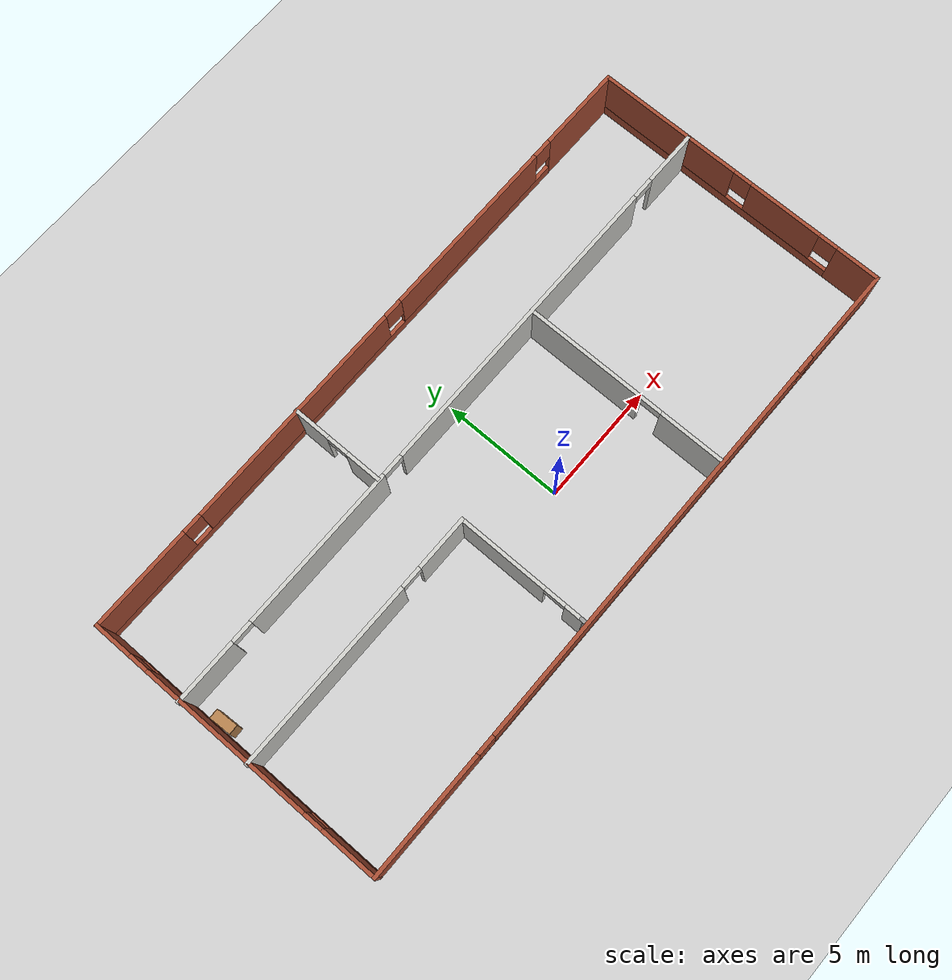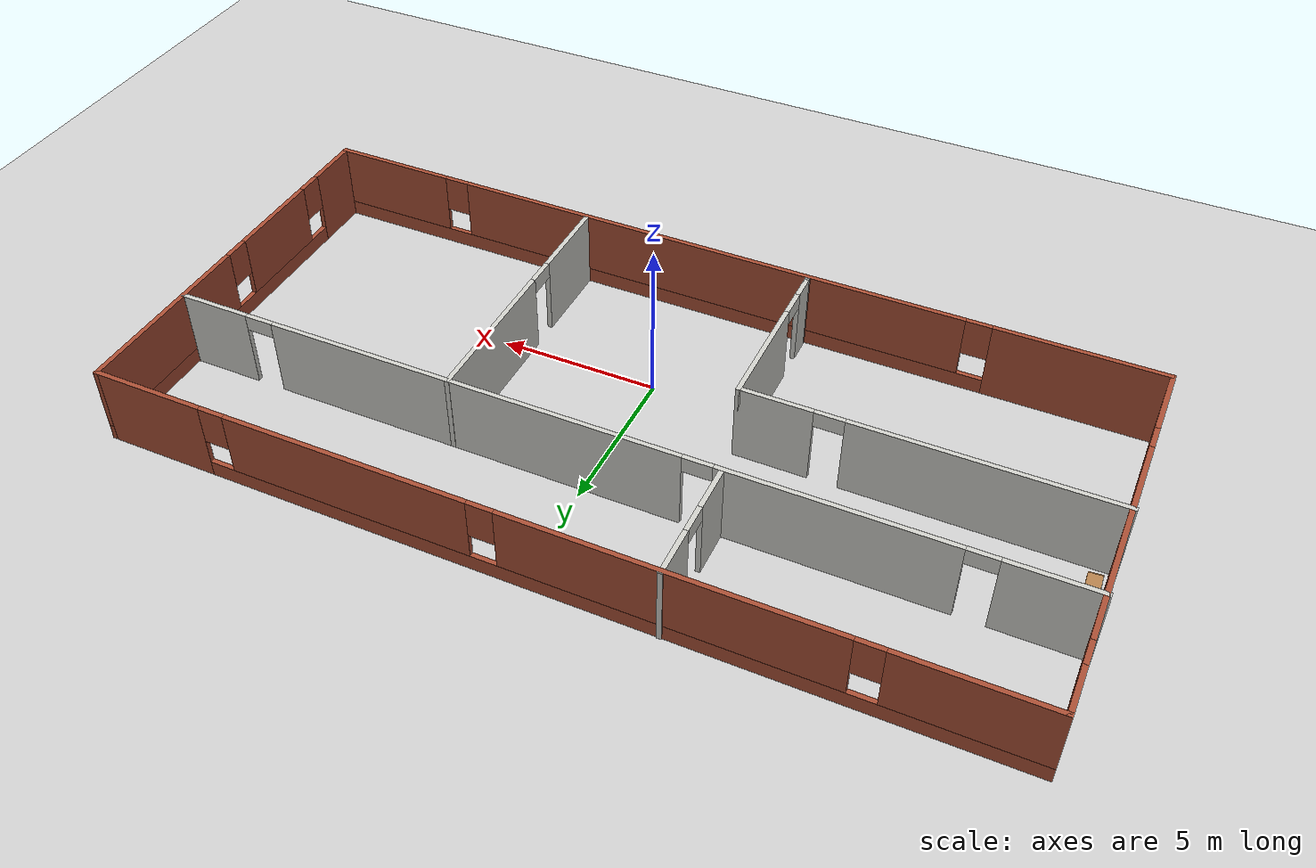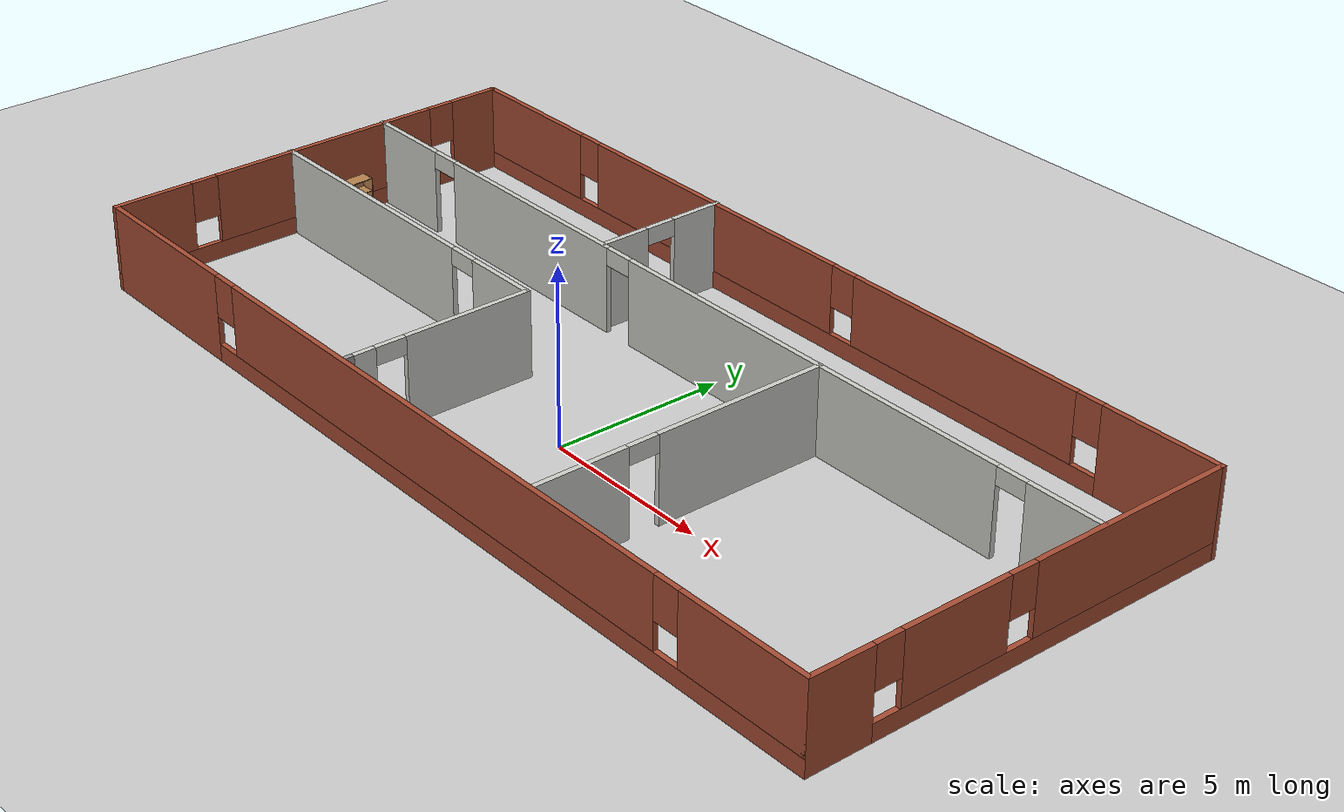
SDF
<sdf version="1.7">
 <world name="default">
  <light name="sun" type="directional">
   <pose>0 0 10 0 -0 0</pose>
   <diffuse>0.8 0.8 0.8 1</diffuse>
   <specular>0.2 0.2 0.2 1</specular>
   <attenuation>
    <range>1000</range>
    <constant>0.9</constant>
    <linear>0.01</linear>
    <quadratic>0.001</quadratic>
   </attenuation>
   <direction>-0.5 0.1 -0.9</direction>
   <spot><inner_angle>0</inner_angle><outer_angle>0</outer_angle><falloff>0</falloff></spot>
  </light>
  <model name="ground_plane">
   <static>1</static>
   <link name="link">
    <collision name="collision">
     <geometry><plane><normal>0 0 1</normal><size>100 100</size></plane></geometry>
     <surface>
      <contact><collide_bitmask>65535</collide_bitmask></contact>
      <friction><ode><mu>100</mu><mu2>50</mu2></ode></friction>
     </surface>
    </collision>
    <visual name="visual">
     <cast_shadows>0</cast_shadows>
     <geometry><plane><normal>0 0 1</normal><size>100 100</size></plane></geometry>
     <material>
      <script><uri>file://media/materials/scripts/gazebo.material</uri><name>Gazebo/Grey</name></script>
     </material>
    </visual>
   </link>
  </model>
  <gravity>0 0 -9.8</gravity>
  <magnetic_field>6e-06 2.3e-05 -4.2e-05</magnetic_field>
  <atmosphere type="adiabatic"/>
  <physics type="ode">
   <max_step_size>0.001</max_step_size>
   <real_time_factor>1</real_time_factor>
   <real_time_update_rate>1000</real_time_update_rate>
  </physics>
  <scene><ambient>0.4 0.4 0.4 1</ambient><background>0.7 0.7 0.7 1</background><shadows>1</shadows></scene>
  <spherical_coordinates>
   <surface_model>EARTH_WGS84</surface_model>
   <latitude_deg>0</latitude_deg>
   <longitude_deg>0</longitude_deg>
   <elevation>0</elevation>
   <heading_deg>0</heading_deg>
  </spherical_coordinates>
  <model name="house">
   <pose>-0.4536 2.24663 0 0 -0 0</pose>
   <link name="Wall_0">
    <pose>-13.6524 -0.015263 0 0 -0 -1.5708</pose>
    <visual name="Wall_0_Visual_0">
     <pose>-5.57159 0 1.25 0 -0 0</pose>
     <geometry><box><size>1.60682 0.15 2.5</size></box></geometry>
     <material>
      <script><uri>file://media/materials/scripts/gazebo.material</uri><name>Gazebo/Bricks</name></script>
      <ambient>0.760784 0.662745 0.627451 1</ambient>
     </material>
     <meta><layer>0</layer></meta>
    </visual>
    <collision name="Wall_0_Collision_0">
     <geometry><box><size>1.60682 0.15 2.5</size></box></geometry>
     <pose>-5.57159 0 1.25 0 -0 0</pose>
    </collision>
    <visual name="Wall_0_Visual_1">
     <pose>0.803408 0 0.25 0 -0 0</pose>
     <geometry><box><size>11.1432 0.15 0.5</size></box></geometry>
     <material>
      <script><uri>file://media/materials/scripts/gazebo.material</uri><name>Gazebo/Bricks</name></script>
      <ambient>0.760784 0.662745 0.627451 1</ambient>
     </material>
     <meta><layer>0</layer></meta>
    </visual>
    <collision name="Wall_0_Collision_1">
     <geometry><box><size>11.1432 0.15 0.5</size></box></geometry>
     <pose>0.803408 0 0.25 0 -0 0</pose>
    </collision>
    <visual name="Wall_0_Visual_2">
     <pose>-0.39039 0 1.5 0 -0 0</pose>
     <geometry><box><size>7.15559 0.15 2</size></box></geometry>
     <material>
      <script><uri>file://media/materials/scripts/gazebo.material</uri><name>Gazebo/Bricks</name></script>
      <ambient>0.760784 0.662745 0.627451 1</ambient>
     </material>
     <meta><layer>0</layer></meta>
    </visual>
    <collision name="Wall_0_Collision_2">
     <geometry><box><size>7.15559 0.15 2</size></box></geometry>
     <pose>-0.39039 0 1.5 0 -0 0</pose>
    </collision>
    <visual name="Wall_0_Visual_3">
     <pose>5.1812 0 1.5 0 -0 0</pose>
     <geometry><box><size>2.3876 0.15 2</size></box></geometry>
     <material>
      <script><uri>file://media/materials/scripts/gazebo.material</uri><name>Gazebo/Bricks</name></script>
      <ambient>0.760784 0.662745 0.627451 1</ambient>
     </material>
     <meta><layer>0</layer></meta>
    </visual>
    <collision name="Wall_0_Collision_3">
     <geometry><box><size>2.3876 0.15 2</size></box></geometry>
     <pose>5.1812 0 1.5 0 -0 0</pose>
    </collision>
    <visual name="Wall_0_Visual_4">
     <pose>-4.36819 0 1.9 0 -0 0</pose>
     <geometry><box><size>0.8 0.15 1.2</size></box></geometry>
     <material>
      <script><uri>file://media/materials/scripts/gazebo.material</uri><name>Gazebo/Bricks</name></script>
      <ambient>0.760784 0.662745 0.627451 1</ambient>
     </material>
     <meta><layer>0</layer></meta>
    </visual>
    <collision name="Wall_0_Collision_4">
     <geometry><box><size>0.8 0.15 1.2</size></box></geometry>
     <pose>-4.36819 0 1.9 0 -0 0</pose>
    </collision>
    <visual name="Wall_0_Visual_5">
     <pose>3.5874 0 1.9 0 -0 0</pose>
     <geometry><box><size>0.8 0.15 1.2</size></box></geometry>
     <material>
      <script><uri>file://media/materials/scripts/gazebo.material</uri><name>Gazebo/Bricks</name></script>
      <ambient>0.760784 0.662745 0.627451 1</ambient>
     </material>
     <meta><layer>0</layer></meta>
    </visual>
    <collision name="Wall_0_Collision_5">
     <geometry><box><size>0.8 0.15 1.2</size></box></geometry>
     <pose>3.5874 0 1.9 0 -0 0</pose>
    </collision>
   </link>
   <link name="Wall_1">
    <pose>0.022599 -6.31526 0 0 -0 0</pose>
    <visual name="Wall_1_Visual_0">
     <pose>-11.1466 0 1.25 0 -0 0</pose>
     <geometry><box><size>5.20681 0.15 2.5</size></box></geometry>
     <material>
      <script><uri>file://media/materials/scripts/gazebo.material</uri><name>Gazebo/Bricks</name></script>
      <ambient>0.760784 0.662745 0.627451 1</ambient>
     </material>
     <meta><layer>0</layer></meta>
    </visual>
    <collision name="Wall_1_Collision_0">
     <geometry><box><size>5.20681 0.15 2.5</size></box></geometry>
     <pose>-11.1466 0 1.25 0 -0 0</pose>
    </collision>
    <visual name="Wall_1_Visual_1">
     <pose>2.60341 0 0.25 0 -0 0</pose>
     <geometry><box><size>22.2932 0.15 0.5</size></box></geometry>
     <material>
      <script><uri>file://media/materials/scripts/gazebo.material</uri><name>Gazebo/Bricks</name></script>
      <ambient>0.760784 0.662745 0.627451 1</ambient>
     </material>
     <meta><layer>0</layer></meta>
    </visual>
    <collision name="Wall_1_Collision_1">
     <geometry><box><size>22.2932 0.15 0.5</size></box></geometry>
     <pose>2.60341 0 0.25 0 -0 0</pose>
    </collision>
    <visual name="Wall_1_Visual_2">
     <pose>0.603307 0 1.5 0 -0 0</pose>
     <geometry><box><size>16.693 0.15 2</size></box></geometry>
     <material>
      <script><uri>file://media/materials/scripts/gazebo.material</uri><name>Gazebo/Bricks</name></script>
      <ambient>0.760784 0.662745 0.627451 1</ambient>
     </material>
     <meta><layer>0</layer></meta>
    </visual>
    <collision name="Wall_1_Collision_2">
     <geometry><box><size>16.693 0.15 2</size></box></geometry>
     <pose>0.603307 0 1.5 0 -0 0</pose>
    </collision>
    <visual name="Wall_1_Visual_3">
     <pose>11.7499 0 1.5 0 -0 0</pose>
     <geometry><box><size>4.0002 0.15 2</size></box></geometry>
     <material>
      <script><uri>file://media/materials/scripts/gazebo.material</uri><name>Gazebo/Bricks</name></script>
      <ambient>0.760784 0.662745 0.627451 1</ambient>
     </material>
     <meta><layer>0</layer></meta>
    </visual>
    <collision name="Wall_1_Collision_3">
     <geometry><box><size>4.0002 0.15 2</size></box></geometry>
     <pose>11.7499 0 1.5 0 -0 0</pose>
    </collision>
    <visual name="Wall_1_Visual_4">
     <pose>-8.14319 0 1.9 0 -0 0</pose>
     <geometry><box><size>0.8 0.15 1.2</size></box></geometry>
     <material>
      <script><uri>file://media/materials/scripts/gazebo.material</uri><name>Gazebo/Bricks</name></script>
      <ambient>0.760784 0.662745 0.627451 1</ambient>
     </material>
     <meta><layer>0</layer></meta>
    </visual>
    <collision name="Wall_1_Collision_4">
     <geometry><box><size>0.8 0.15 1.2</size></box></geometry>
     <pose>-8.14319 0 1.9 0 -0 0</pose>
    </collision>
    <visual name="Wall_1_Visual_5">
     <pose>9.3498 0 1.9 0 -0 0</pose>
     <geometry><box><size>0.8 0.15 1.2</size></box></geometry>
     <material>
      <script><uri>file://media/materials/scripts/gazebo.material</uri><name>Gazebo/Bricks</name></script>
      <ambient>0.760784 0.662745 0.627451 1</ambient>
     </material>
     <meta><layer>0</layer></meta>
    </visual>
    <collision name="Wall_1_Collision_5">
     <geometry><box><size>0.8 0.15 1.2</size></box></geometry>
     <pose>9.3498 0 1.9 0 -0 0</pose>
    </collision>
   </link>
   <link name="Wall_10">
    <pose>-2.8476 -3.39165 0 0 -0 -1.5708</pose>
    <visual name="Wall_10_Visual_0">
     <pose>-0.843155 0 1.25 0 -0 0</pose>
     <geometry><box><size>3.81369 0.15 2.5</size></box></geometry>
     <material>
      <script><uri>file://media/materials/scripts/gazebo.material</uri><name>Gazebo/CeilingTiled</name></script>
      <ambient>1 1 1 1</ambient>
     </material>
     <meta><layer>0</layer></meta>
    </visual>
    <collision name="Wall_10_Collision_0">
     <geometry><box><size>3.81369 0.15 2.5</size></box></geometry>
     <pose>-0.843155 0 1.25 0 -0 0</pose>
    </collision>
    <visual name="Wall_10_Visual_1">
     <pose>2.35684 0 1.25 0 -0 0</pose>
     <geometry><box><size>0.786311 0.15 2.5</size></box></geometry>
     <material>
      <script><uri>file://media/materials/scripts/gazebo.material</uri><name>Gazebo/CeilingTiled</name></script>
      <ambient>1 1 1 1</ambient>
     </material>
     <meta><layer>0</layer></meta>
    </visual>
    <collision name="Wall_10_Collision_1">
     <geometry><box><size>0.786311 0.15 2.5</size></box></geometry>
     <pose>2.35684 0 1.25 0 -0 0</pose>
    </collision>
    <visual name="Wall_10_Visual_2">
     <pose>1.51369 0 2.25 0 -0 0</pose>
     <geometry><box><size>0.9 0.15 0.5</size></box></geometry>
     <material>
      <script><uri>file://media/materials/scripts/gazebo.material</uri><name>Gazebo/CeilingTiled</name></script>
      <ambient>1 1 1 1</ambient>
     </material>
     <meta><layer>0</layer></meta>
    </visual>
    <collision name="Wall_10_Collision_2">
     <geometry><box><size>0.9 0.15 0.5</size></box></geometry>
     <pose>1.51369 0 2.25 0 -0 0</pose>
    </collision>
   </link>
   <link name="Wall_12">
    <collision name="Wall_12_Collision">
     <geometry><box><size>0.25 0.15 2.5</size></box></geometry>
     <pose>0 0 1.25 0 -0 0</pose>
    </collision>
    <visual name="Wall_12_Visual">
     <pose>0 0 1.25 0 -0 0</pose>
     <geometry><box><size>0.25 0.15 2.5</size></box></geometry>
     <material>
      <script><uri>file://media/materials/scripts/gazebo.material</uri><name>Gazebo/Grey</name></script>
      <ambient>1 1 1 1</ambient>
     </material>
     <meta><layer>0</layer></meta>
    </visual>
    <pose>-2.8476 -6.11665 0 0 -0 -1.5708</pose>
   </link>
   <link name="Wall_15">
    <pose>4.61909 -1.88237 0 0 -0 -1.5708</pose>
    <visual name="Wall_15_Visual_0">
     <pose>-1.80823 0 1.25 0 -0 0</pose>
     <geometry><box><size>5.13354 0.15 2.5</size></box></geometry>
     <material>
      <script><uri>file://media/materials/scripts/gazebo.material</uri><name>Gazebo/CeilingTiled</name></script>
      <ambient>1 1 1 1</ambient>
     </material>
     <meta><layer>0</layer></meta>
    </visual>
    <collision name="Wall_15_Collision_0">
     <geometry><box><size>5.13354 0.15 2.5</size></box></geometry>
     <pose>-1.80823 0 1.25 0 -0 0</pose>
    </collision>
    <visual name="Wall_15_Visual_1">
     <pose>3.01677 0 1.25 0 -0 0</pose>
     <geometry><box><size>2.71646 0.15 2.5</size></box></geometry>
     <material>
      <script><uri>file://media/materials/scripts/gazebo.material</uri><name>Gazebo/CeilingTiled</name></script>
      <ambient>1 1 1 1</ambient>
     </material>
     <meta><layer>0</layer></meta>
    </visual>
    <collision name="Wall_15_Collision_1">
     <geometry><box><size>2.71646 0.15 2.5</size></box></geometry>
     <pose>3.01677 0 1.25 0 -0 0</pose>
    </collision>
    <visual name="Wall_15_Visual_2">
     <pose>1.20854 0 2.25 0 -0 0</pose>
     <geometry><box><size>0.9 0.15 0.5</size></box></geometry>
     <material>
      <script><uri>file://media/materials/scripts/gazebo.material</uri><name>Gazebo/CeilingTiled</name></script>
      <ambient>1 1 1 1</ambient>
     </material>
     <meta><layer>0</layer></meta>
    </visual>
    <collision name="Wall_15_Collision_2">
     <geometry><box><size>0.9 0.15 0.5</size></box></geometry>
     <pose>1.20854 0 2.25 0 -0 0</pose>
    </collision>
   </link>
   <link name="Wall_2">
    <pose>13.6976 -0.015263 0 0 -0 1.5708</pose>
    <visual name="Wall_2_Visual_0">
     <pose>-5.43708 0 1.25 0 -0 0</pose>
     <geometry><box><size>1.87583 0.15 2.5</size></box></geometry>
     <material>
      <script><uri>file://media/materials/scripts/gazebo.material</uri><name>Gazebo/Bricks</name></script>
      <ambient>1 1 1 1</ambient>
     </material>
     <meta><layer>0</layer></meta>
    </visual>
    <collision name="Wall_2_Collision_0">
     <geometry><box><size>1.87583 0.15 2.5</size></box></geometry>
     <pose>-5.43708 0 1.25 0 -0 0</pose>
    </collision>
    <visual name="Wall_2_Visual_1">
     <pose>0.937916 0 0.25 0 -0 0</pose>
     <geometry><box><size>10.8742 0.15 0.5</size></box></geometry>
     <material>
      <script><uri>file://media/materials/scripts/gazebo.material</uri><name>Gazebo/Bricks</name></script>
      <ambient>1 1 1 1</ambient>
     </material>
     <meta><layer>0</layer></meta>
    </visual>
    <collision name="Wall_2_Collision_1">
     <geometry><box><size>10.8742 0.15 0.5</size></box></geometry>
     <pose>0.937916 0 0.25 0 -0 0</pose>
    </collision>
    <visual name="Wall_2_Visual_2">
     <pose>-2.1219 0 1.5 0 -0 0</pose>
     <geometry><box><size>3.15453 0.15 2</size></box></geometry>
     <material>
      <script><uri>file://media/materials/scripts/gazebo.material</uri><name>Gazebo/Bricks</name></script>
      <ambient>1 1 1 1</ambient>
     </material>
     <meta><layer>0</layer></meta>
    </visual>
    <collision name="Wall_2_Collision_2">
     <geometry><box><size>3.15453 0.15 2</size></box></geometry>
     <pose>-2.1219 0 1.5 0 -0 0</pose>
    </collision>
    <visual name="Wall_2_Visual_3">
     <pose>3.31518 0 1.5 0 -0 0</pose>
     <geometry><box><size>6.11963 0.15 2</size></box></geometry>
     <material>
      <script><uri>file://media/materials/scripts/gazebo.material</uri><name>Gazebo/Bricks</name></script>
      <ambient>1 1 1 1</ambient>
     </material>
     <meta><layer>0</layer></meta>
    </visual>
    <collision name="Wall_2_Collision_3">
     <geometry><box><size>6.11963 0.15 2</size></box></geometry>
     <pose>3.31518 0 1.5 0 -0 0</pose>
    </collision>
    <visual name="Wall_2_Visual_4">
     <pose>-4.09917 0 1.9 0 -0 0</pose>
     <geometry><box><size>0.8 0.15 1.2</size></box></geometry>
     <material>
      <script><uri>file://media/materials/scripts/gazebo.material</uri><name>Gazebo/Bricks</name></script>
      <ambient>1 1 1 1</ambient>
     </material>
     <meta><layer>0</layer></meta>
    </visual>
    <collision name="Wall_2_Collision_4">
     <geometry><box><size>0.8 0.15 1.2</size></box></geometry>
     <pose>-4.09917 0 1.9 0 -0 0</pose>
    </collision>
    <visual name="Wall_2_Visual_5">
     <pose>-0.144635 0 1.9 0 -0 0</pose>
     <geometry><box><size>0.8 0.15 1.2</size></box></geometry>
     <material>
      <script><uri>file://media/materials/scripts/gazebo.material</uri><name>Gazebo/Bricks</name></script>
      <ambient>1 1 1 1</ambient>
     </material>
     <meta><layer>0</layer></meta>
    </visual>
    <collision name="Wall_2_Collision_5">
     <geometry><box><size>0.8 0.15 1.2</size></box></geometry>
     <pose>-0.144635 0 1.9 0 -0 0</pose>
    </collision>
   </link>
   <link name="Wall_3">
    <pose>0.022599 6.28474 0 0 -0 3.14159</pose>
    <visual name="Wall_3_Visual_0">
     <pose>-11.9593 0 1.25 0 -0 0</pose>
     <geometry><box><size>3.58148 0.15 2.5</size></box></geometry>
     <material>
      <script><uri>file://media/materials/scripts/gazebo.material</uri><name>Gazebo/Bricks</name></script>
      <ambient>1 1 1 1</ambient>
     </material>
     <meta><layer>0</layer></meta>
    </visual>
    <collision name="Wall_3_Collision_0">
     <geometry><box><size>3.58148 0.15 2.5</size></box></geometry>
     <pose>-11.9593 0 1.25 0 -0 0</pose>
    </collision>
    <visual name="Wall_3_Visual_1">
     <pose>1.79074 0 0.25 0 -0 0</pose>
     <geometry><box><size>23.9185 0.15 0.5</size></box></geometry>
     <material>
      <script><uri>file://media/materials/scripts/gazebo.material</uri><name>Gazebo/Bricks</name></script>
      <ambient>1 1 1 1</ambient>
     </material>
     <meta><layer>0</layer></meta>
    </visual>
    <collision name="Wall_3_Collision_1">
     <geometry><box><size>23.9185 0.15 0.5</size></box></geometry>
     <pose>1.79074 0 0.25 0 -0 0</pose>
    </collision>
    <visual name="Wall_3_Visual_2">
     <pose>-5.58137 0 1.5 0 -0 0</pose>
     <geometry><box><size>7.5743 0.15 2</size></box></geometry>
     <material>
      <script><uri>file://media/materials/scripts/gazebo.material</uri><name>Gazebo/Bricks</name></script>
      <ambient>1 1 1 1</ambient>
     </material>
     <meta><layer>0</layer></meta>
    </visual>
    <collision name="Wall_3_Collision_2">
     <geometry><box><size>7.5743 0.15 2</size></box></geometry>
     <pose>-5.58137 0 1.5 0 -0 0</pose>
    </collision>
    <visual name="Wall_3_Visual_3">
     <pose>3.81646 0 1.5 0 -0 0</pose>
     <geometry><box><size>9.62136 0.15 2</size></box></geometry>
     <material>
      <script><uri>file://media/materials/scripts/gazebo.material</uri><name>Gazebo/Bricks</name></script>
      <ambient>1 1 1 1</ambient>
     </material>
     <meta><layer>0</layer></meta>
    </visual>
    <collision name="Wall_3_Collision_3">
     <geometry><box><size>9.62136 0.15 2</size></box></geometry>
     <pose>3.81646 0 1.5 0 -0 0</pose>
    </collision>
    <visual name="Wall_3_Visual_4">
     <pose>11.5886 0 1.5 0 -0 0</pose>
     <geometry><box><size>4.32286 0.15 2</size></box></geometry>
     <material>
      <script><uri>file://media/materials/scripts/gazebo.material</uri><name>Gazebo/Bricks</name></script>
      <ambient>1 1 1 1</ambient>
     </material>
     <meta><layer>0</layer></meta>
    </visual>
    <collision name="Wall_3_Collision_4">
     <geometry><box><size>4.32286 0.15 2</size></box></geometry>
     <pose>11.5886 0 1.5 0 -0 0</pose>
    </collision>
    <visual name="Wall_3_Visual_5">
     <pose>-9.76852 0 1.9 0 -0 0</pose>
     <geometry><box><size>0.8 0.15 1.2</size></box></geometry>
     <material>
      <script><uri>file://media/materials/scripts/gazebo.material</uri><name>Gazebo/Bricks</name></script>
      <ambient>1 1 1 1</ambient>
     </material>
     <meta><layer>0</layer></meta>
    </visual>
    <collision name="Wall_3_Collision_5">
     <geometry><box><size>0.8 0.15 1.2</size></box></geometry>
     <pose>-9.76852 0 1.9 0 -0 0</pose>
    </collision>
    <visual name="Wall_3_Visual_6">
     <pose>-1.39421 0 1.9 0 -0 0</pose>
     <geometry><box><size>0.8 0.15 1.2</size></box></geometry>
     <material>
      <script><uri>file://media/materials/scripts/gazebo.material</uri><name>Gazebo/Bricks</name></script>
      <ambient>1 1 1 1</ambient>
     </material>
     <meta><layer>0</layer></meta>
    </visual>
    <collision name="Wall_3_Collision_6">
     <geometry><box><size>0.8 0.15 1.2</size></box></geometry>
     <pose>-1.39421 0 1.9 0 -0 0</pose>
    </collision>
    <visual name="Wall_3_Visual_7">
     <pose>9.02714 0 1.9 0 -0 0</pose>
     <geometry><box><size>0.8 0.15 1.2</size></box></geometry>
     <material>
      <script><uri>file://media/materials/scripts/gazebo.material</uri><name>Gazebo/Bricks</name></script>
      <ambient>1 1 1 1</ambient>
     </material>
     <meta><layer>0</layer></meta>
    </visual>
    <collision name="Wall_3_Collision_7">
     <geometry><box><size>0.8 0.15 1.2</size></box></geometry>
     <pose>9.02714 0 1.9 0 -0 0</pose>
    </collision>
   </link>
   <link name="Wall_5">
    <pose>-0.022438 2.41034 0 0 -0 0</pose>
    <visual name="Wall_5_Visual_0">
     <pose>-12.4031 0 1.25 0 -0 0</pose>
     <geometry><box><size>2.6938 0.15 2.5</size></box></geometry>
     <material>
      <script><uri>file://media/materials/scripts/gazebo.material</uri><name>Gazebo/CeilingTiled</name></script>
      <ambient>1 1 1 1</ambient>
     </material>
     <meta><layer>0</layer></meta>
    </visual>
    <collision name="Wall_5_Collision_0">
     <geometry><box><size>2.6938 0.15 2.5</size></box></geometry>
     <pose>-12.4031 0 1.25 0 -0 0</pose>
    </collision>
    <visual name="Wall_5_Visual_1">
     <pose>-6.77171 0 1.25 0 -0 0</pose>
     <geometry><box><size>6.76897 0.15 2.5</size></box></geometry>
     <material>
      <script><uri>file://media/materials/scripts/gazebo.material</uri><name>Gazebo/CeilingTiled</name></script>
      <ambient>1 1 1 1</ambient>
     </material>
     <meta><layer>0</layer></meta>
    </visual>
    <collision name="Wall_5_Collision_1">
     <geometry><box><size>6.76897 0.15 2.5</size></box></geometry>
     <pose>-6.77171 0 1.25 0 -0 0</pose>
    </collision>
    <visual name="Wall_5_Visual_2">
     <pose>4.02817 0 1.25 0 -0 0</pose>
     <geometry><box><size>13.0308 0.15 2.5</size></box></geometry>
     <material>
      <script><uri>file://media/materials/scripts/gazebo.material</uri><name>Gazebo/CeilingTiled</name></script>
      <ambient>1 1 1 1</ambient>
     </material>
     <meta><layer>0</layer></meta>
    </visual>
    <collision name="Wall_5_Collision_2">
     <geometry><box><size>13.0308 0.15 2.5</size></box></geometry>
     <pose>4.02817 0 1.25 0 -0 0</pose>
    </collision>
    <visual name="Wall_5_Visual_3">
     <pose>12.5968 0 1.25 0 -0 0</pose>
     <geometry><box><size>2.30644 0.15 2.5</size></box></geometry>
     <material>
      <script><uri>file://media/materials/scripts/gazebo.material</uri><name>Gazebo/CeilingTiled</name></script>
      <ambient>1 1 1 1</ambient>
     </material>
     <meta><layer>0</layer></meta>
    </visual>
    <collision name="Wall_5_Collision_3">
     <geometry><box><size>2.30644 0.15 2.5</size></box></geometry>
     <pose>12.5968 0 1.25 0 -0 0</pose>
    </collision>
    <visual name="Wall_5_Visual_4">
     <pose>-10.6062 0 2.25 0 -0 0</pose>
     <geometry><box><size>0.9 0.15 0.5</size></box></geometry>
     <material>
      <script><uri>file://media/materials/scripts/gazebo.material</uri><name>Gazebo/CeilingTiled</name></script>
      <ambient>1 1 1 1</ambient>
     </material>
     <meta><layer>0</layer></meta>
    </visual>
    <collision name="Wall_5_Collision_4">
     <geometry><box><size>0.9 0.15 0.5</size></box></geometry>
     <pose>-10.6062 0 2.25 0 -0 0</pose>
    </collision>
    <visual name="Wall_5_Visual_5">
     <pose>-2.93723 0 2.25 0 -0 0</pose>
     <geometry><box><size>0.9 0.15 0.5</size></box></geometry>
     <material>
      <script><uri>file://media/materials/scripts/gazebo.material</uri><name>Gazebo/CeilingTiled</name></script>
      <ambient>1 1 1 1</ambient>
     </material>
     <meta><layer>0</layer></meta>
    </visual>
    <collision name="Wall_5_Collision_5">
     <geometry><box><size>0.9 0.15 0.5</size></box></geometry>
     <pose>-2.93723 0 2.25 0 -0 0</pose>
    </collision>
    <visual name="Wall_5_Visual_6">
     <pose>10.9936 0 2.25 0 -0 0</pose>
     <geometry><box><size>0.9 0.15 0.5</size></box></geometry>
     <material>
      <script><uri>file://media/materials/scripts/gazebo.material</uri><name>Gazebo/CeilingTiled</name></script>
      <ambient>1 1 1 1</ambient>
     </material>
     <meta><layer>0</layer></meta>
    </visual>
    <collision name="Wall_5_Collision_6">
     <geometry><box><size>0.9 0.15 0.5</size></box></geometry>
     <pose>10.9936 0 2.25 0 -0 0</pose>
    </collision>
   </link>
   <link name="Wall_7">
    <pose>-3.66474 4.39026 0 0 -0 -1.5708</pose>
    <visual name="Wall_7_Visual_0">
     <pose>-1.20498 0 1.25 0 -0 0</pose>
     <geometry><box><size>1.59004 0.15 2.5</size></box></geometry>
     <material>
      <script><uri>file://media/materials/scripts/gazebo.material</uri><name>Gazebo/CeilingTiled</name></script>
      <ambient>1 1 1 1</ambient>
     </material>
     <meta><layer>0</layer></meta>
    </visual>
    <collision name="Wall_7_Collision_0">
     <geometry><box><size>1.59004 0.15 2.5</size></box></geometry>
     <pose>-1.20498 0 1.25 0 -0 0</pose>
    </collision>
    <visual name="Wall_7_Visual_1">
     <pose>1.24502 0 1.25 0 -0 0</pose>
     <geometry><box><size>1.50996 0.15 2.5</size></box></geometry>
     <material>
      <script><uri>file://media/materials/scripts/gazebo.material</uri><name>Gazebo/CeilingTiled</name></script>
      <ambient>1 1 1 1</ambient>
     </material>
     <meta><layer>0</layer></meta>
    </visual>
    <collision name="Wall_7_Collision_1">
     <geometry><box><size>1.50996 0.15 2.5</size></box></geometry>
     <pose>1.24502 0 1.25 0 -0 0</pose>
    </collision>
    <visual name="Wall_7_Visual_2">
     <pose>0.040039 0 2.25 0 -0 0</pose>
     <geometry><box><size>0.9 0.15 0.5</size></box></geometry>
     <material>
      <script><uri>file://media/materials/scripts/gazebo.material</uri><name>Gazebo/CeilingTiled</name></script>
      <ambient>1 1 1 1</ambient>
     </material>
     <meta><layer>0</layer></meta>
    </visual>
    <collision name="Wall_7_Collision_2">
     <geometry><box><size>0.9 0.15 0.5</size></box></geometry>
     <pose>0.040039 0 2.25 0 -0 0</pose>
    </collision>
   </link>
   <link name="Wall_9">
    <pose>-8.2726 -0.716648 0 0 -0 0</pose>
    <visual name="Wall_9_Visual_0">
     <pose>-1.59633 0 1.25 0 -0 0</pose>
     <geometry><box><size>7.80735 0.15 2.5</size></box></geometry>
     <material>
      <script><uri>file://media/materials/scripts/gazebo.material</uri><name>Gazebo/CeilingTiled</name></script>
      <ambient>1 1 1 1</ambient>
     </material>
     <meta><layer>0</layer></meta>
    </visual>
    <collision name="Wall_9_Collision_0">
     <geometry><box><size>7.80735 0.15 2.5</size></box></geometry>
     <pose>-1.59633 0 1.25 0 -0 0</pose>
    </collision>
    <visual name="Wall_9_Visual_1">
     <pose>4.35367 0 1.25 0 -0 0</pose>
     <geometry><box><size>2.29265 0.15 2.5</size></box></geometry>
     <material>
      <script><uri>file://media/materials/scripts/gazebo.material</uri><name>Gazebo/CeilingTiled</name></script>
      <ambient>1 1 1 1</ambient>
     </material>
     <meta><layer>0</layer></meta>
    </visual>
    <collision name="Wall_9_Collision_1">
     <geometry><box><size>2.29265 0.15 2.5</size></box></geometry>
     <pose>4.35367 0 1.25 0 -0 0</pose>
    </collision>
    <visual name="Wall_9_Visual_2">
     <pose>2.75735 0 2.25 0 -0 0</pose>
     <geometry><box><size>0.9 0.15 0.5</size></box></geometry>
     <material>
      <script><uri>file://media/materials/scripts/gazebo.material</uri><name>Gazebo/CeilingTiled</name></script>
      <ambient>1 1 1 1</ambient>
     </material>
     <meta><layer>0</layer></meta>
    </visual>
    <collision name="Wall_9_Collision_2">
     <geometry><box><size>0.9 0.15 0.5</size></box></geometry>
     <pose>2.75735 0 2.25 0 -0 0</pose>
    </collision>
   </link>
   <static>1</static>
  </model>
  <model name="bookshelf">
   <static>1</static>
   <link name="link">
    <inertial><mass>1</mass></inertial>
    <collision name="back">
     <pose>0 0.005 0.6 0 -0 0</pose>
     <geometry><box><size>0.9 0.01 1.2</size></box></geometry>
    </collision>
    <visual name="visual1">
     <pose>0 0.005 0.6 0 -0 0</pose>
     <geometry><box><size>0.9 0.01 1.2</size></box></geometry>
     <material>
      <script><uri>file://media/materials/scripts/gazebo.material</uri><name>Gazebo/Wood</name></script>
     </material>
    </visual>
    <collision name="left_side">
     <pose>0.45 -0.195 0.6 0 -0 0</pose>
     <geometry><box><size>0.02 0.4 1.2</size></box></geometry>
    </collision>
    <visual name="visual2">
     <pose>0.45 -0.195 0.6 0 -0 0</pose>
     <geometry><box><size>0.02 0.4 1.2</size></box></geometry>
     <material>
      <script><uri>file://media/materials/scripts/gazebo.material</uri><name>Gazebo/Wood</name></script>
     </material>
    </visual>
    <collision name="right_side">
     <pose>-0.45 -0.195 0.6 0 -0 0</pose>
     <geometry><box><size>0.02 0.4 1.2</size></box></geometry>
    </collision>
    <visual name="visual3">
     <pose>-0.45 -0.195 0.6 0 -0 0</pose>
     <geometry><box><size>0.02 0.4 1.2</size></box></geometry>
     <material>
      <script><uri>file://media/materials/scripts/gazebo.material</uri><name>Gazebo/Wood</name></script>
     </material>
    </visual>
    <collision name="bottom">
     <pose>0 -0.195 0.03 0 -0 0</pose>
     <geometry><box><size>0.88 0.4 0.06</size></box></geometry>
    </collision>
    <visual name="visual4">
     <pose>0 -0.195 0.03 0 -0 0</pose>
     <geometry><box><size>0.88 0.4 0.06</size></box></geometry>
     <material>
      <script><uri>file://media/materials/scripts/gazebo.material</uri><name>Gazebo/Wood</name></script>
     </material>
    </visual>
    <collision name="top">
     <pose>0 -0.195 1.19 0 -0 0</pose>
     <geometry><box><size>0.88 0.4 0.02</size></box></geometry>
    </collision>
    <visual name="visual5">
     <pose>0 -0.195 1.19 0 -0 0</pose>
     <geometry><box><size>0.88 0.4 0.02</size></box></geometry>
     <material>
      <script><uri>file://media/materials/scripts/gazebo.material</uri><name>Gazebo/Wood</name></script>
     </material>
    </visual>
    <collision name="low_shelf">
     <pose>0 -0.195 0.43 0 -0 0</pose>
     <geometry><box><size>0.88 0.4 0.02</size></box></geometry>
    </collision>
    <visual name="visual6">
     <pose>0 -0.195 0.43 0 -0 0</pose>
     <geometry><box><size>0.88 0.4 0.02</size></box></geometry>
     <material>
      <script><uri>file://media/materials/scripts/gazebo.material</uri><name>Gazebo/Wood</name></script>
     </material>
    </visual>
    <collision name="high_shelf">
     <pose>0 -0.195 0.8 0 -0 0</pose>
     <geometry><box><size>0.88 0.4 0.02</size></box></geometry>
    </collision>
    <visual name="visual7">
     <pose>0 -0.195 0.8 0 -0 0</pose>
     <geometry><box><size>0.88 0.4 0.02</size></box></geometry>
     <material>
      <script><uri>file://media/materials/scripts/gazebo.material</uri><name>Gazebo/Wood</name></script>
     </material>
    </visual>
   </link>
   <pose>-13.9669 3.31592 0 0.026351 -0.001205 1.6165</pose>
  </model>
 </world>
</sdf>
